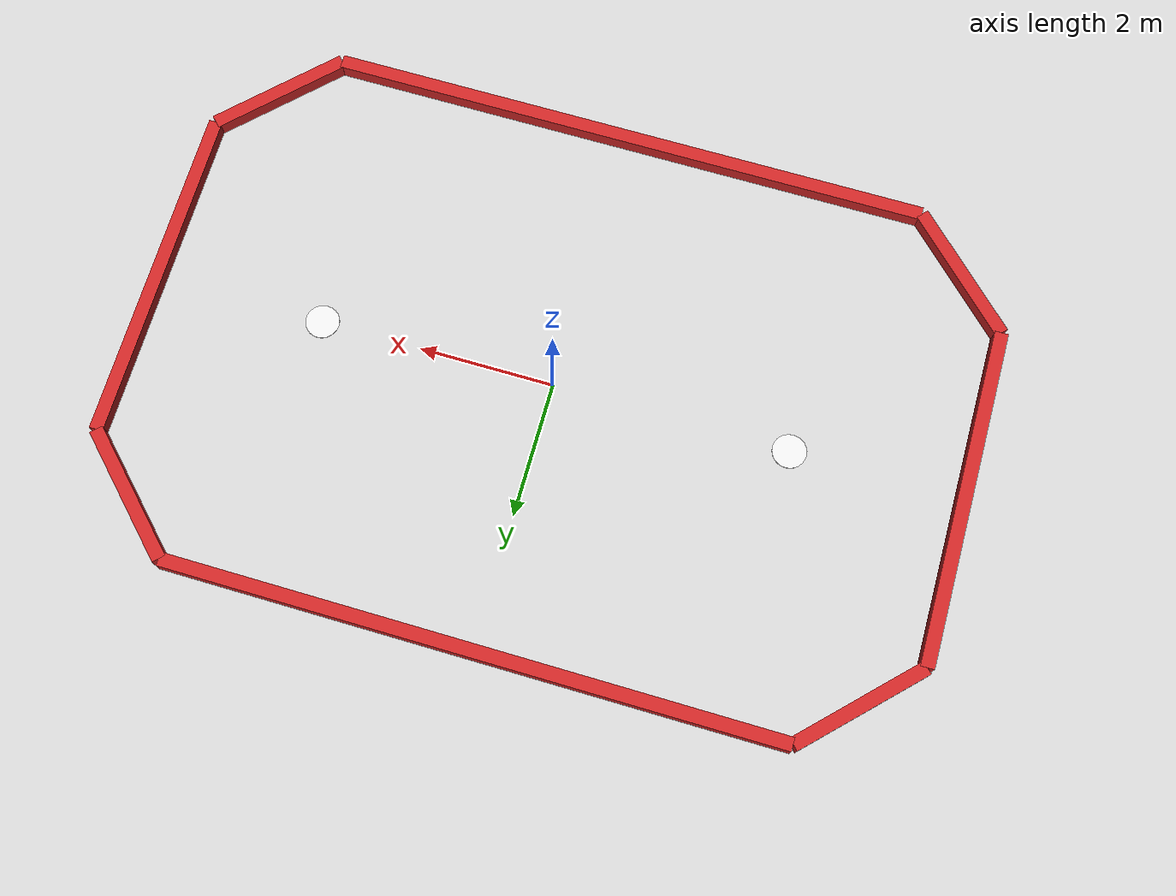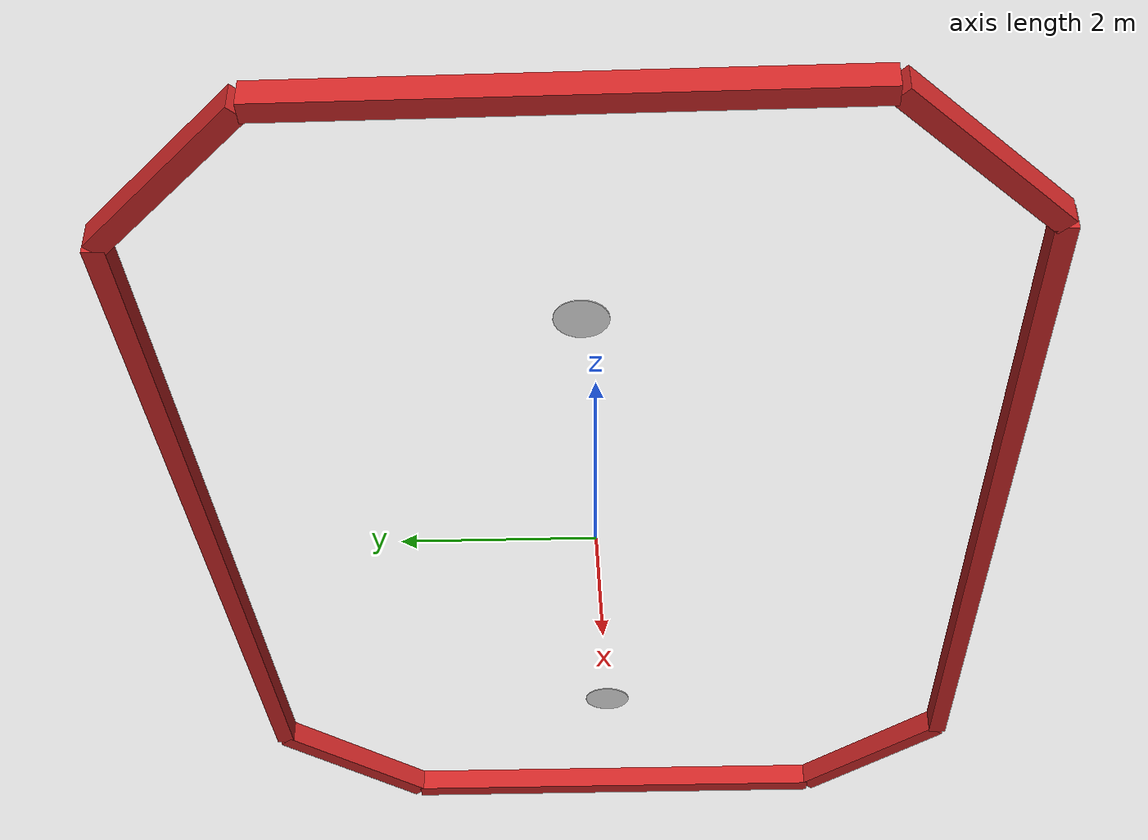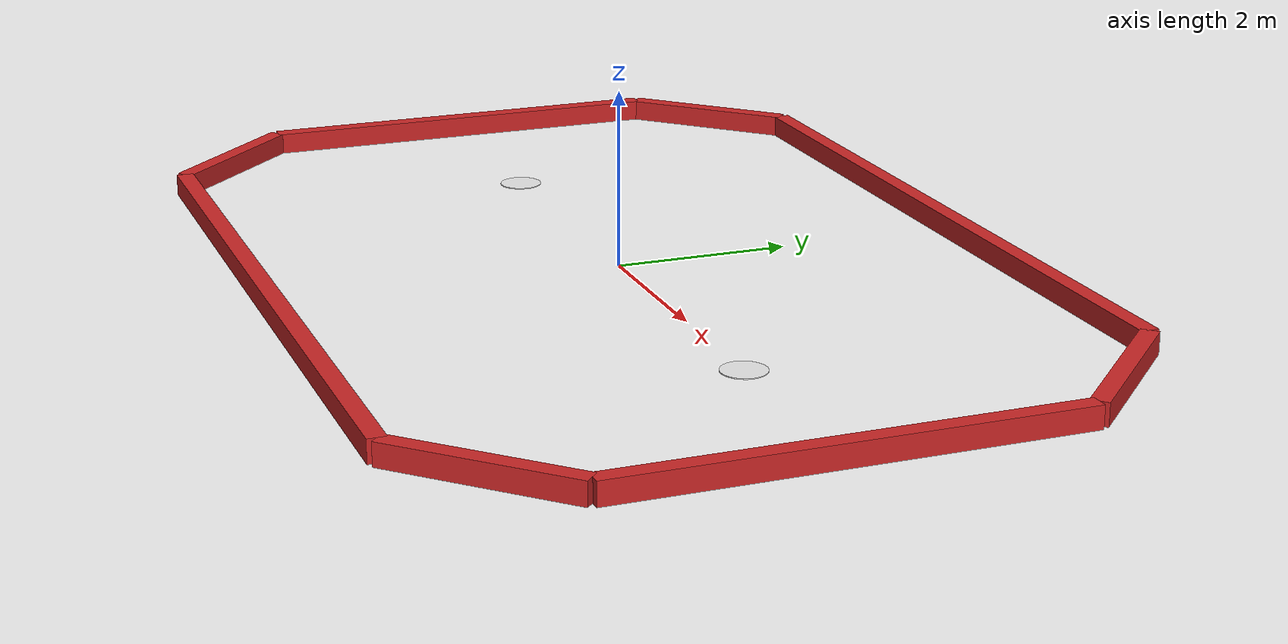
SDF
<?xml version='1.0'?>
<sdf version='1.4'>
  <model name='Wall'>
    <link name='Wall_1'>
      <collision name='Wall_1_Collision'>
        <geometry>
          <box>
            <size>5 0.2 0.24999</size>
          </box>
        </geometry>
        <pose>0 0 0.124999 0 -0 0</pose>
      </collision>
      <visual name='Wall_1_Visual'>
        <pose>0 0 0.124999 0 -0 0</pose>
        <geometry>
          <box>
            <size>5 0.2 0.24999</size>
          </box>
        </geometry>
        <material>
          <script>
            <uri>file://media/materials/scripts/gazebo.material</uri>
            <name>Gazebo/Red</name>
          </script>
        </material>
      </visual>
      <velocity_decay>
        <linear>0</linear>
        <angular>0</angular>
      </velocity_decay>
      <pose>-6 0 0 0 0 -1.5708</pose>
    </link>

    <link name='Wall_2'>
      <collision name='Wall_2_Collision'>
        <geometry>
          <box>
            <size>9 0.2 0.24999</size>
          </box>
        </geometry>
        <pose>0 0 0.124999 0 -0 0</pose>
      </collision>
      <visual name='Wall_2_Visual'>
        <pose>0 0 0.124999 0 -0 0</pose>
        <geometry>
          <box>
            <size>9 0.2 0.24999</size>
          </box>
         </geometry>
        <material>
          <script>
            <uri>file://media/materials/scripts/gazebo.material</uri>
            <name>Gazebo/Red</name>
          </script>
        </material>
      </visual>
      <velocity_decay>
        <linear>0</linear>
        <angular>0</angular>
      </velocity_decay>
      <pose>0 -4 0 0 0 0</pose>
    </link>

 <link name='Wall_3'>
      <collision name='Wall_3_Collision'>
        <geometry>
          <box>
            <size>5 0.2 0.24999</size>
          </box>
        </geometry>
        <pose>0 0 0.124999 0 -0 0</pose>
      </collision>
      <visual name='Wall_3_Visual'>
        <pose>0 0 0.124999 0 -0 0</pose>
        <geometry>
          <box>
            <size>5 0.2 0.24999</size>
          </box>
        </geometry>
        <material>
          <script>
            <uri>file://media/materials/scripts/gazebo.material</uri>
            <name>Gazebo/Red</name>
          </script>
        </material>
      </visual>
      <velocity_decay>
        <linear>0</linear>
        <angular>0</angular>
      </velocity_decay>
      <pose>6 0 0 0 0 -1.5708</pose>
    </link>

    <link name='Wall_4'>
      <collision name='Wall_4_Collision'>
        <geometry>
          <box>
            <size>9 0.2 0.24999</size>
          </box>
        </geometry>
        <pose>0 0 0.124999 0 -0 0</pose>
      </collision>
      <visual name='Wall_4_Visual'>
        <pose>0 0 0.124999 0 -0 0</pose>
        <geometry>
          <box>
            <size>9 0.2 0.24999</size>
          </box>
        </geometry>
        <material>
          <script>
            <uri>file://media/materials/scripts/gazebo.material</uri>
            <name>Gazebo/Red</name>
          </script>
        </material>
      </visual>
      <velocity_decay>
        <linear>0</linear>
        <angular>0</angular>
      </velocity_decay>
      <pose>0 4 0 0 0 0</pose>
    </link>

    <link name='Wall_5'>
      <collision name='Wall_5_Collision'>
        <geometry>
          <box>
            <size> 2.121320 0.2 0.24999</size>
          </box>
        </geometry>
        <pose>0 0 0.124999 0 -0 0</pose>
      </collision>
      <visual name='Wall_5_Visual'>
        <pose>0 0 0.124999 0 -0 0</pose>
        <geometry>
          <box>
            <size>2.121320 0.2 0.24999</size>
          </box>
        </geometry>
        <material>
          <script>
            <uri>file://media/materials/scripts/gazebo.material</uri>
            <name>Gazebo/Red</name>
          </script>
        </material>
      </visual>
      <velocity_decay>
        <linear>0</linear>
        <angular>0</angular>
      </velocity_decay>
      <pose>5.25 3.25 0 0 0 -0.78539</pose>
    </link>

    <link name='Wall_6'>
      <collision name='Wall_6_Collision'>
        <geometry>
          <box>
            <size> 2.121320 0.2 0.24999</size>
          </box>
        </geometry>
        <pose>0 0 0.124999 0 -0 0</pose>
      </collision>
      <visual name='Wall_6_Visual'>
        <pose>0 0 0.124999 0 -0 0</pose>
        <geometry>
          <box>
            <size>2.121320 0.2 0.24999</size>
          </box>
        </geometry>
        <material>
          <script>
            <uri>file://media/materials/scripts/gazebo.material</uri>
            <name>Gazebo/Red</name>
          </script>
        </material>
      </visual>
      <velocity_decay>
        <linear>0</linear>
        <angular>0</angular>
      </velocity_decay>
      <pose>-5.25 -3.25 0 0 0 -0.78539</pose>
    </link>
<link name='Wall_6'>
      <collision name='Wall_6_Collision'>
        <geometry>
          <box>
            <size> 2.121320 0.2 0.24999</size>
          </box>
        </geometry>
        <pose>0 0 0.124999 0 -0 0</pose>
      </collision>
      <visual name='Wall_6_Visual'>
        <pose>0 0 0.124999 0 -0 0</pose>
        <geometry>
          <box>
            <size>2.121320 0.2 0.24999</size>
          </box>
        </geometry>
        <material>
          <script>
            <uri>file://media/materials/scripts/gazebo.material</uri>
            <name>Gazebo/Red</name>
          </script>
        </material>
      </visual>
      <velocity_decay>
        <linear>0</linear>
        <angular>0</angular>
      </velocity_decay>
      <pose>-5.25 -3.25 0 0 0 -0.78539</pose>
    </link>

    <link name='Wall_7'>
      <collision name='Wall_7_Collision'>
        <geometry>
          <box>
            <size> 2.121320 0.2 0.24999</size>
          </box>
        </geometry>
        <pose>0 0 0.124999 0 -0 0</pose>
      </collision>
      <visual name='Wall_7_Visual'>
        <pose>0 0 0.124999 0 -0 0</pose>
        <geometry>
          <box>
            <size>2.121320 0.2 0.24999</size>
          </box>
        </geometry>
        <material>
          <script>
            <uri>file://media/materials/scripts/gazebo.material</uri>
            <name>Gazebo/Red</name>
          </script>
        </material>
      </visual>
      <velocity_decay>
        <linear>0</linear>
        <angular>0</angular>
      </velocity_decay>
      <pose>-5.25 3.25 0 0 0 0.78539</pose>
    </link>

    <link name='Wall_8'>
      <collision name='Wall_8_Collision'>
        <geometry>
          <box>
            <size> 2.121320 0.2 0.24999</size>
          </box>
        </geometry>
        <pose>0 0 0.124999 0 -0 0</pose>
      </collision>
      <visual name='Wall_7_Visual'>
        <pose>0 0 0.124999 0 -0 0</pose>
        <geometry>
          <box>
            <size>2.121320 0.2 0.24999</size>
          </box>
        </geometry>
        <material>
          <script>
            <uri>file://media/materials/scripts/gazebo.material</uri>
            <name>Gazebo/Red</name>
          </script>
        </material>
      </visual>
      <velocity_decay>
        <linear>0</linear>
        <angular>0</angular>
      </velocity_decay>
      <pose> 5.25 -3.25 0 0 0 0.78539</pose>
    </link>

    <link name='Target_1'>
      <collision name='Target_1_Collision'>
        <geometry>
          <cylinder>
	    <radius> 0.24999 </radius>
	    <length> 0.24999 </length>
	  </cylinder>
        </geometry>
        <pose>0 0 0.34999 0 -0 0</pose>
      </collision>
      <visual name='Target_1_Visual'>
        <pose>0 0 0 0 0 0</pose>
        <geometry>
         <cylinder>
            <radius> 0.24999 </radius>
	    <length> 0.01 </length>
          </cylinder>
	</geometry>
        <material>
          <script>
            <uri>file://media/materials/scripts/gazebo.material</uri>
            <name>Gazebo/White</name>
          </script>
        </material>
      </visual>
      <velocity_decay>
        <linear>0</linear>
        <angular>0</angular>
      </velocity_decay>
      <pose> 3.5 0 0 0 0 0</pose>
    </link>

 <link name='Target_2'>
      <collision name='Target2_Collision'>
        <geometry>
          <cylinder>
            <radius> 0.24999 </radius>
	    <length> 0.24999 </length>
          </cylinder>
        </geometry>
        <pose>0 0 0.34999 0 -0 0</pose>
      </collision>
      <visual name='Target_2_Visual'>
        <pose>0 0 0 0 0 0</pose>
        <geometry>
         <cylinder>
            <radius> 0.24999 </radius>
	    <length> 0.01 </length>
          </cylinder>
	</geometry>
        <material>
          <script>
            <uri>file://media/materials/scripts/gazebo.material</uri>
            <name>Gazebo/White</name>
          </script>
        </material>
      </visual>
      <velocity_decay>
        <linear>0</linear>
        <angular>0</angular>
      </velocity_decay>
      <pose> -3.5 0 0 0 0 0</pose>
    </link>

    <static>1</static>
  </model>
</sdf>
